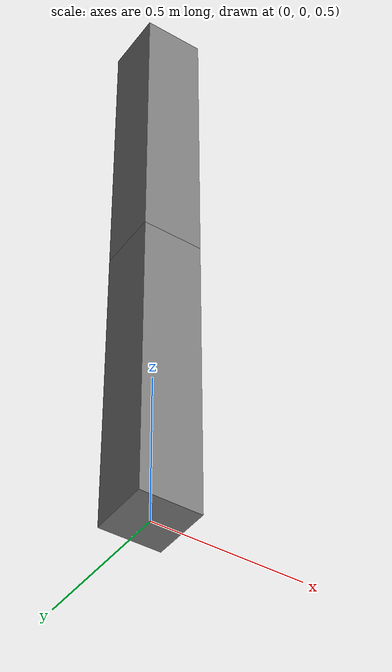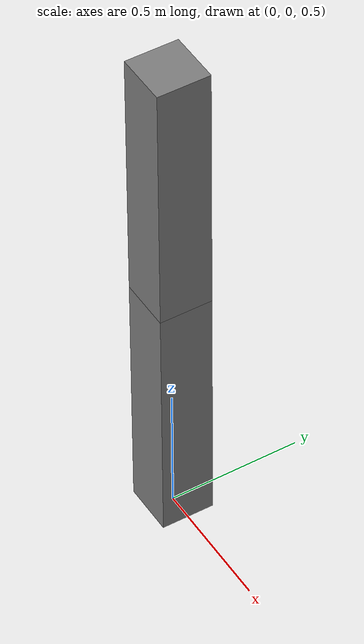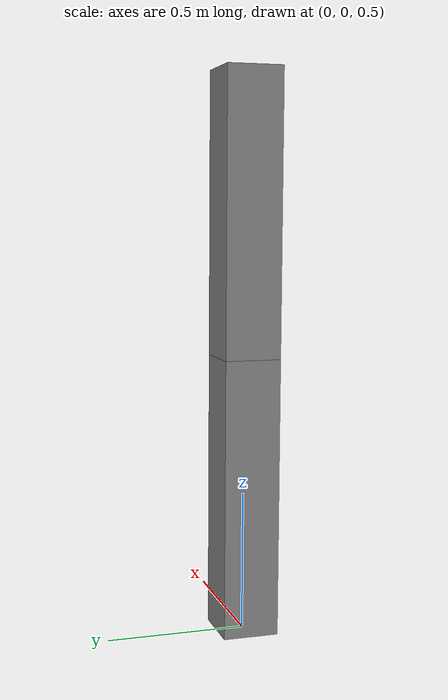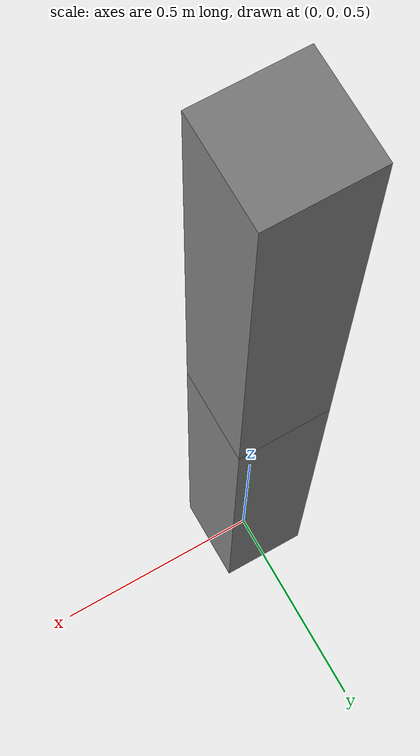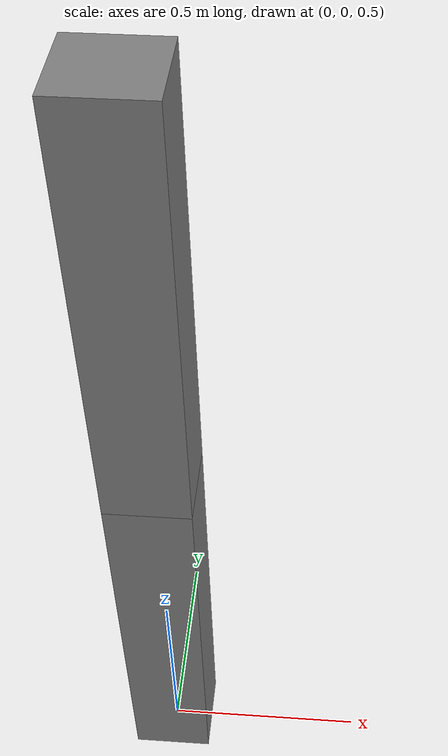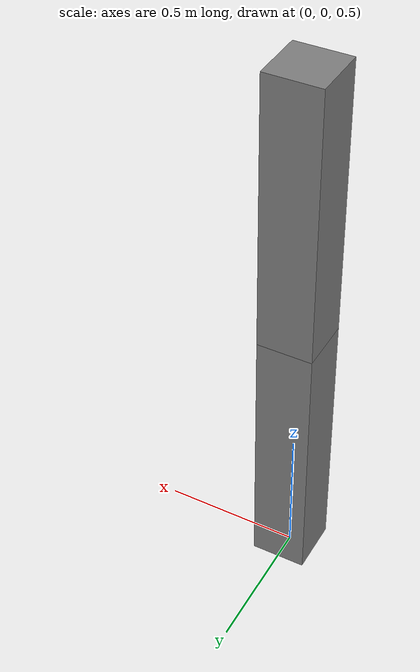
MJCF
<mujoco model="fk_test">
            <option gravity="0 0 0" timestep="0.001"/>
            <worldbody>
                <body name="link1" pos="0 0 1">
                    <joint name="j1" type="hinge" axis="0 1 0"/>
                    <geom type="box" size="0.1 0.1 0.5" mass="1.0"/>
                    <body name="link2" pos="0 0 1">
                        <joint name="j2" type="hinge" axis="0 1 0"/>
                        <geom type="box" size="0.1 0.1 0.5" mass="1.0"/>
                    </body>
                </body>
            </worldbody>
        </mujoco>
